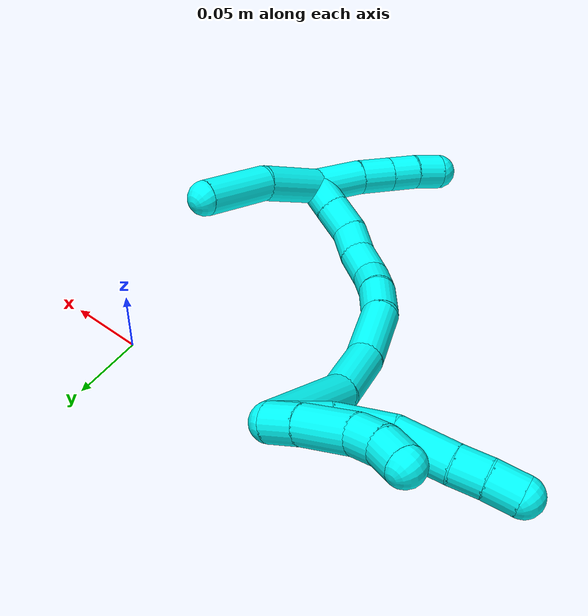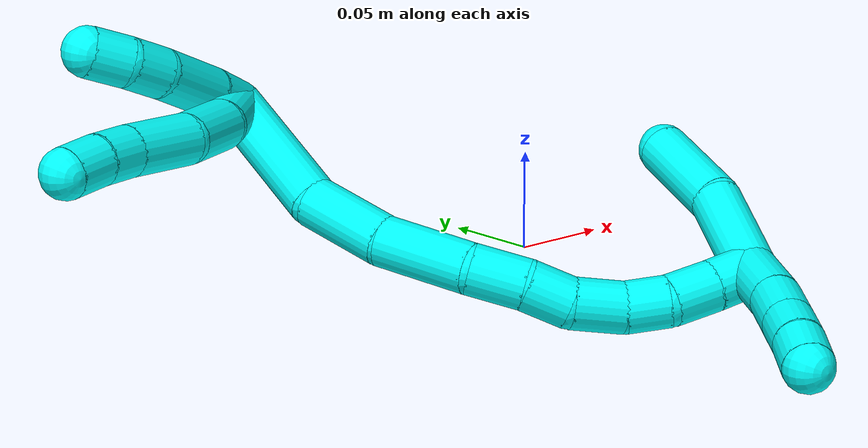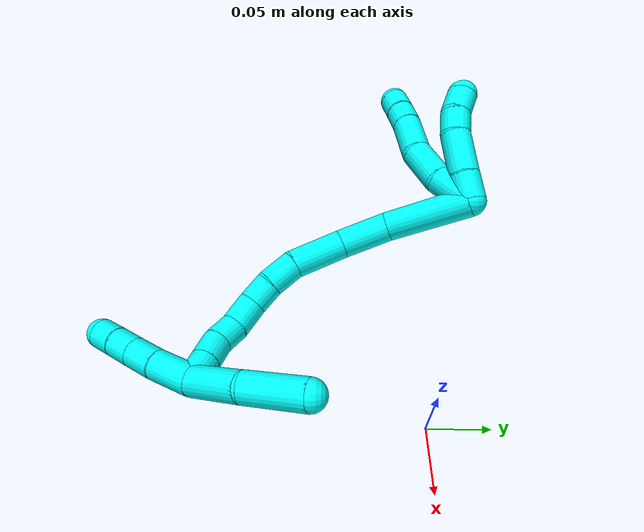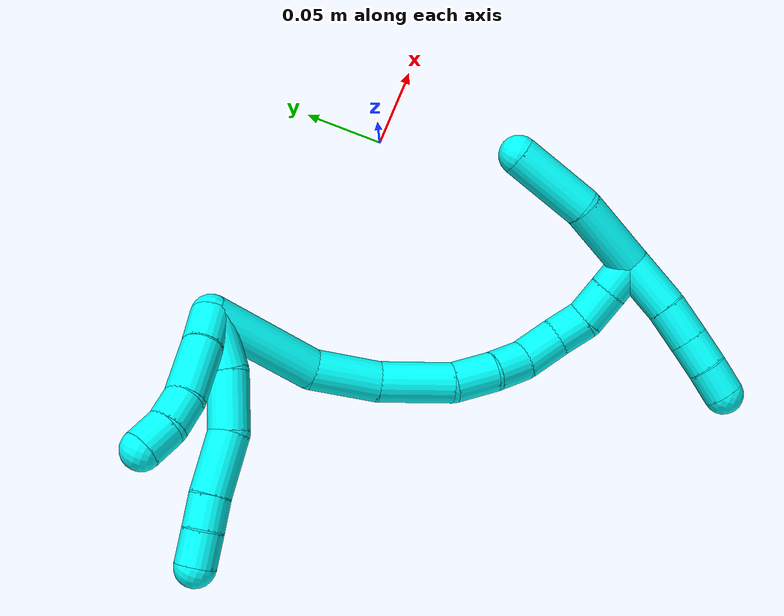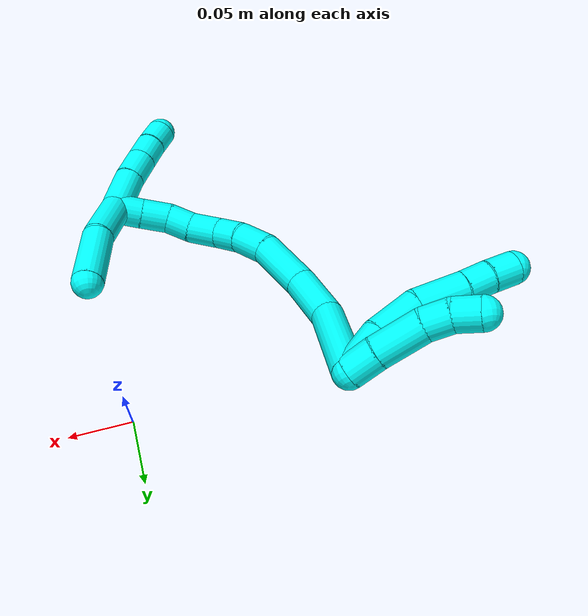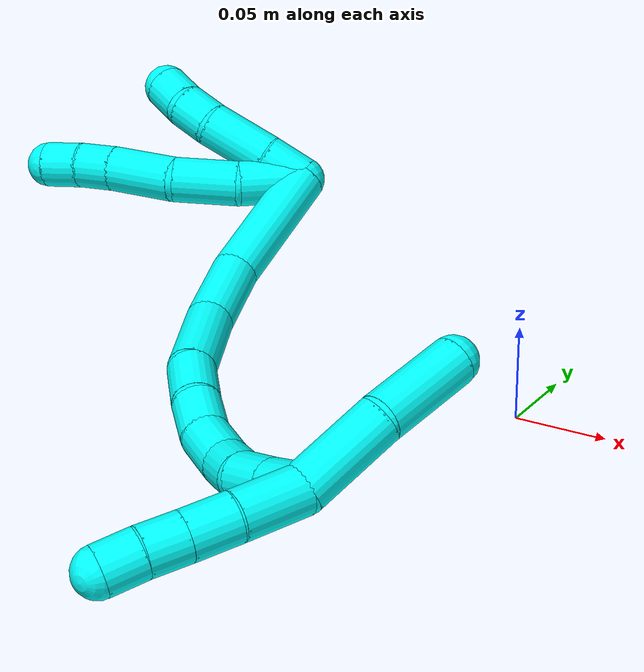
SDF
<sdf version="1.7">
 <world name="default">
  <model name="3">
   <static>0</static>
   <link name="3">
    <collision name="collision-cylinder-e_1_2_8">
     <pose>-0.011636 0.005981 0.011727 -0.471631 -0.723862 0.18145</pose>
     <geometry><cylinder><radius>0.0125</radius><length>0.035139</length></cylinder></geometry>
     <surface>
      <friction><ode><mu>1.16</mu><mu2>1.16</mu2><slip1>0</slip1><slip2>0</slip2></ode></friction>
      <contact><ode><kp>1e+06</kp><kd>1</kd><max_vel>0</max_vel><min_depth>0.001</min_depth></ode></contact>
     </surface>
    </collision>
    <visual name="visual-cylinder-e_1_2_8">
     <pose>-0.011636 0.005981 0.011727 -0.471631 -0.723862 0.18145</pose>
     <geometry><cylinder><radius>0.0125</radius><length>0.035139</length></cylinder></geometry>
     <material><ambient>0.003922 1 0.996078 1</ambient></material>
    </visual>
    <collision name="collision-cylinder-e_2_8_9">
     <pose>-0.037047 0.019922 0.031558 -0.776449 -0.881193 0.381</pose>
     <geometry><cylinder><radius>0.0125</radius><length>0.03571</length></cylinder></geometry>
     <surface>
      <friction><ode><mu>1.16</mu><mu2>1.16</mu2><slip1>0</slip1><slip2>0</slip2></ode></friction>
      <contact><ode><kp>1e+06</kp><kd>1</kd><max_vel>0</max_vel><min_depth>0.001</min_depth></ode></contact>
     </surface>
    </collision>
    <visual name="visual-cylinder-e_2_8_9">
     <pose>-0.037047 0.019922 0.031558 -0.776449 -0.881193 0.381</pose>
     <geometry><cylinder><radius>0.0125</radius><length>0.03571</length></cylinder></geometry>
     <material><ambient>0.003922 1 0.996078 1</ambient></material>
    </visual>
    <collision name="collision-cylinder-e_3_9_10">
     <pose>-0.06705 0.037121 0.042814 -1.242 -1.02927 0.768837</pose>
     <geometry><cylinder><radius>0.0125</radius><length>0.037875</length></cylinder></geometry>
     <surface>
      <friction><ode><mu>1.16</mu><mu2>1.16</mu2><slip1>0</slip1><slip2>0</slip2></ode></friction>
      <contact><ode><kp>1e+06</kp><kd>1</kd><max_vel>0</max_vel><min_depth>0.001</min_depth></ode></contact>
     </surface>
    </collision>
    <visual name="visual-cylinder-e_3_9_10">
     <pose>-0.06705 0.037121 0.042814 -1.242 -1.02927 0.768837</pose>
     <geometry><cylinder><radius>0.0125</radius><length>0.037875</length></cylinder></geometry>
     <material><ambient>0.003922 1 0.996078 1</ambient></material>
    </visual>
    <collision name="collision-cylinder-e_4_10_11">
     <pose>-0.091944 0.050901 0.048452 -1.06998 -1.03222 0.648781</pose>
     <geometry><cylinder><radius>0.0125</radius><length>0.02019</length></cylinder></geometry>
     <surface>
      <friction><ode><mu>1.16</mu><mu2>1.16</mu2><slip1>0</slip1><slip2>0</slip2></ode></friction>
      <contact><ode><kp>1e+06</kp><kd>1</kd><max_vel>0</max_vel><min_depth>0.001</min_depth></ode></contact>
     </surface>
    </collision>
    <visual name="visual-cylinder-e_4_10_11">
     <pose>-0.091944 0.050901 0.048452 -1.06998 -1.03222 0.648781</pose>
     <geometry><cylinder><radius>0.0125</radius><length>0.02019</length></cylinder></geometry>
     <material><ambient>0.003922 1 0.996078 1</ambient></material>
    </visual>
    <collision name="collision-cylinder-e_5_11_6">
     <pose>-0.110105 0.059347 0.053339 -1.01933 -1.1211 0.674854</pose>
     <geometry><cylinder><radius>0.0125</radius><length>0.021087</length></cylinder></geometry>
     <surface>
      <friction><ode><mu>1.16</mu><mu2>1.16</mu2><slip1>0</slip1><slip2>0</slip2></ode></friction>
      <contact><ode><kp>1e+06</kp><kd>1</kd><max_vel>0</max_vel><min_depth>0.001</min_depth></ode></contact>
     </surface>
    </collision>
    <visual name="visual-cylinder-e_5_11_6">
     <pose>-0.110105 0.059347 0.053339 -1.01933 -1.1211 0.674854</pose>
     <geometry><cylinder><radius>0.0125</radius><length>0.021087</length></cylinder></geometry>
     <material><ambient>0.003922 1 0.996078 1</ambient></material>
    </visual>
    <collision name="collision-cylinder-e_1_2_12">
     <pose>-0.006277 0.009439 0.002547 -1.30721 -0.570792 0.442101</pose>
     <geometry><cylinder><radius>0.0125</radius><length>0.023237</length></cylinder></geometry>
     <surface>
      <friction><ode><mu>1.16</mu><mu2>1.16</mu2><slip1>0</slip1><slip2>0</slip2></ode></friction>
      <contact><ode><kp>1e+06</kp><kd>1</kd><max_vel>0</max_vel><min_depth>0.001</min_depth></ode></contact>
     </surface>
    </collision>
    <visual name="visual-cylinder-e_1_2_12">
     <pose>-0.006277 0.009439 0.002547 -1.30721 -0.570792 0.442101</pose>
     <geometry><cylinder><radius>0.0125</radius><length>0.023237</length></cylinder></geometry>
     <material><ambient>0.003922 1 0.996078 1</ambient></material>
    </visual>
    <collision name="collision-cylinder-e_2_12_13">
     <pose>-0.023544 0.033246 0.008259 -1.35398 -0.641494 0.521833</pose>
     <geometry><cylinder><radius>0.0125</radius><length>0.036727</length></cylinder></geometry>
     <surface>
      <friction><ode><mu>1.16</mu><mu2>1.16</mu2><slip1>0</slip1><slip2>0</slip2></ode></friction>
      <contact><ode><kp>1e+06</kp><kd>1</kd><max_vel>0</max_vel><min_depth>0.001</min_depth></ode></contact>
     </surface>
    </collision>
    <visual name="visual-cylinder-e_2_12_13">
     <pose>-0.023544 0.033246 0.008259 -1.35398 -0.641494 0.521833</pose>
     <geometry><cylinder><radius>0.0125</radius><length>0.036727</length></cylinder></geometry>
     <material><ambient>0.003922 1 0.996078 1</ambient></material>
    </visual>
    <collision name="collision-cylinder-e_3_13_14">
     <pose>-0.040939 0.055288 0.011023 -1.62309 -0.695065 0.729244</pose>
     <geometry><cylinder><radius>0.0125</radius><length>0.020008</length></cylinder></geometry>
     <surface>
      <friction><ode><mu>1.16</mu><mu2>1.16</mu2><slip1>0</slip1><slip2>0</slip2></ode></friction>
      <contact><ode><kp>1e+06</kp><kd>1</kd><max_vel>0</max_vel><min_depth>0.001</min_depth></ode></contact>
     </surface>
    </collision>
    <visual name="visual-cylinder-e_3_13_14">
     <pose>-0.040939 0.055288 0.011023 -1.62309 -0.695065 0.729244</pose>
     <geometry><cylinder><radius>0.0125</radius><length>0.020008</length></cylinder></geometry>
     <material><ambient>0.003922 1 0.996078 1</ambient></material>
    </visual>
    <collision name="collision-cylinder-e_4_14_5">
     <pose>-0.05386 0.069891 0.007488 -1.9954 -0.708273 1.04052</pose>
     <geometry><cylinder><radius>0.0125</radius><length>0.020028</length></cylinder></geometry>
     <surface>
      <friction><ode><mu>1.16</mu><mu2>1.16</mu2><slip1>0</slip1><slip2>0</slip2></ode></friction>
      <contact><ode><kp>1e+06</kp><kd>1</kd><max_vel>0</max_vel><min_depth>0.001</min_depth></ode></contact>
     </surface>
    </collision>
    <visual name="visual-cylinder-e_4_14_5">
     <pose>-0.05386 0.069891 0.007488 -1.9954 -0.708273 1.04052</pose>
     <geometry><cylinder><radius>0.0125</radius><length>0.020028</length></cylinder></geometry>
     <material><ambient>0.003922 1 0.996078 1</ambient></material>
    </visual>
    <collision name="collision-cylinder-e_1_2_15">
     <pose>-0.007992 -0.014488 0.031706 0.428624 -0.22537 -0.049252</pose>
     <geometry><cylinder><radius>0.0125</radius><length>0.071528</length></cylinder></geometry>
     <surface>
      <friction><ode><mu>1.16</mu><mu2>1.16</mu2><slip1>0</slip1><slip2>0</slip2></ode></friction>
      <contact><ode><kp>1e+06</kp><kd>1</kd><max_vel>0</max_vel><min_depth>0.001</min_depth></ode></contact>
     </surface>
    </collision>
    <visual name="visual-cylinder-e_1_2_15">
     <pose>-0.007992 -0.014488 0.031706 0.428624 -0.22537 -0.049252</pose>
     <geometry><cylinder><radius>0.0125</radius><length>0.071528</length></cylinder></geometry>
     <material><ambient>0.003922 1 0.996078 1</ambient></material>
    </visual>
    <collision name="collision-cylinder-e_2_15_16">
     <pose>-0.013632 -0.036916 0.082857 0.387669 0.111545 0.021918</pose>
     <geometry><cylinder><radius>0.0125</radius><length>0.042269</length></cylinder></geometry>
     <surface>
      <friction><ode><mu>1.16</mu><mu2>1.16</mu2><slip1>0</slip1><slip2>0</slip2></ode></friction>
      <contact><ode><kp>1e+06</kp><kd>1</kd><max_vel>0</max_vel><min_depth>0.001</min_depth></ode></contact>
     </surface>
    </collision>
    <visual name="visual-cylinder-e_2_15_16">
     <pose>-0.013632 -0.036916 0.082857 0.387669 0.111545 0.021918</pose>
     <geometry><cylinder><radius>0.0125</radius><length>0.042269</length></cylinder></geometry>
     <material><ambient>0.003922 1 0.996078 1</ambient></material>
    </visual>
    <collision name="collision-cylinder-e_3_16_17">
     <pose>-0.004289 -0.052387 0.122763 0.352674 0.310227 0.055712</pose>
     <geometry><cylinder><radius>0.0125</radius><length>0.045792</length></cylinder></geometry>
     <surface>
      <friction><ode><mu>1.16</mu><mu2>1.16</mu2><slip1>0</slip1><slip2>0</slip2></ode></friction>
      <contact><ode><kp>1e+06</kp><kd>1</kd><max_vel>0</max_vel><min_depth>0.001</min_depth></ode></contact>
     </surface>
    </collision>
    <visual name="visual-cylinder-e_3_16_17">
     <pose>-0.004289 -0.052387 0.122763 0.352674 0.310227 0.055712</pose>
     <geometry><cylinder><radius>0.0125</radius><length>0.045792</length></cylinder></geometry>
     <material><ambient>0.003922 1 0.996078 1</ambient></material>
    </visual>
    <collision name="collision-cylinder-e_4_17_18">
     <pose>0.009117 -0.066626 0.152962 0.603191 0.49717 0.157602</pose>
     <geometry><cylinder><radius>0.0125</radius><length>0.026908</length></cylinder></geometry>
     <surface>
      <friction><ode><mu>1.16</mu><mu2>1.16</mu2><slip1>0</slip1><slip2>0</slip2></ode></friction>
      <contact><ode><kp>1e+06</kp><kd>1</kd><max_vel>0</max_vel><min_depth>0.001</min_depth></ode></contact>
     </surface>
    </collision>
    <visual name="visual-cylinder-e_4_17_18">
     <pose>0.009117 -0.066626 0.152962 0.603191 0.49717 0.157602</pose>
     <geometry><cylinder><radius>0.0125</radius><length>0.026908</length></cylinder></geometry>
     <material><ambient>0.003922 1 0.996078 1</ambient></material>
    </visual>
    <collision name="collision-cylinder-e_5_18_19">
     <pose>0.02047 -0.080529 0.169501 0.813552 0.462589 0.202225</pose>
     <geometry><cylinder><radius>0.0125</radius><length>0.022124</length></cylinder></geometry>
     <surface>
      <friction><ode><mu>1.16</mu><mu2>1.16</mu2><slip1>0</slip1><slip2>0</slip2></ode></friction>
      <contact><ode><kp>1e+06</kp><kd>1</kd><max_vel>0</max_vel><min_depth>0.001</min_depth></ode></contact>
     </surface>
    </collision>
    <visual name="visual-cylinder-e_5_18_19">
     <pose>0.02047 -0.080529 0.169501 0.813552 0.462589 0.202225</pose>
     <geometry><cylinder><radius>0.0125</radius><length>0.022124</length></cylinder></geometry>
     <material><ambient>0.003922 1 0.996078 1</ambient></material>
    </visual>
    <collision name="collision-cylinder-e_6_19_20">
     <pose>0.034573 -0.094261 0.182661 0.799203 0.787844 0.347534</pose>
     <geometry><cylinder><radius>0.0125</radius><length>0.025863</length></cylinder></geometry>
     <surface>
      <friction><ode><mu>1.16</mu><mu2>1.16</mu2><slip1>0</slip1><slip2>0</slip2></ode></friction>
      <contact><ode><kp>1e+06</kp><kd>1</kd><max_vel>0</max_vel><min_depth>0.001</min_depth></ode></contact>
     </surface>
    </collision>
    <visual name="visual-cylinder-e_6_19_20">
     <pose>0.034573 -0.094261 0.182661 0.799203 0.787844 0.347534</pose>
     <geometry><cylinder><radius>0.0125</radius><length>0.025863</length></cylinder></geometry>
     <material><ambient>0.003922 1 0.996078 1</ambient></material>
    </visual>
    <collision name="collision-cylinder-e_7_20_21">
     <pose>0.052175 -0.103541 0.194767 0.445198 0.924268 0.224546</pose>
     <geometry><cylinder><radius>0.0125</radius><length>0.021135</length></cylinder></geometry>
     <surface>
      <friction><ode><mu>1.16</mu><mu2>1.16</mu2><slip1>0</slip1><slip2>0</slip2></ode></friction>
      <contact><ode><kp>1e+06</kp><kd>1</kd><max_vel>0</max_vel><min_depth>0.001</min_depth></ode></contact>
     </surface>
    </collision>
    <visual name="visual-cylinder-e_7_20_21">
     <pose>0.052175 -0.103541 0.194767 0.445198 0.924268 0.224546</pose>
     <geometry><cylinder><radius>0.0125</radius><length>0.021135</length></cylinder></geometry>
     <material><ambient>0.003922 1 0.996078 1</ambient></material>
    </visual>
    <collision name="collision-cylinder-e_8_21_22">
     <pose>0.071351 -0.109057 0.203504 0.747913 1.20781 0.528775</pose>
     <geometry><cylinder><radius>0.0125</radius><length>0.02298</length></cylinder></geometry>
     <surface>
      <friction><ode><mu>1.16</mu><mu2>1.16</mu2><slip1>0</slip1><slip2>0</slip2></ode></friction>
      <contact><ode><kp>1e+06</kp><kd>1</kd><max_vel>0</max_vel><min_depth>0.001</min_depth></ode></contact>
     </surface>
    </collision>
    <visual name="visual-cylinder-e_8_21_22">
     <pose>0.071351 -0.109057 0.203504 0.747913 1.20781 0.528775</pose>
     <geometry><cylinder><radius>0.0125</radius><length>0.02298</length></cylinder></geometry>
     <material><ambient>0.003922 1 0.996078 1</ambient></material>
    </visual>
    <collision name="collision-cylinder-e_9_22_1">
     <pose>0.09223 -0.114016 0.20913 0.691984 1.24519 0.50644</pose>
     <geometry><cylinder><radius>0.0125</radius><length>0.0214</length></cylinder></geometry>
     <surface>
      <friction><ode><mu>1.16</mu><mu2>1.16</mu2><slip1>0</slip1><slip2>0</slip2></ode></friction>
      <contact><ode><kp>1e+06</kp><kd>1</kd><max_vel>0</max_vel><min_depth>0.001</min_depth></ode></contact>
     </surface>
    </collision>
    <visual name="visual-cylinder-e_9_22_1">
     <pose>0.09223 -0.114016 0.20913 0.691984 1.24519 0.50644</pose>
     <geometry><cylinder><radius>0.0125</radius><length>0.0214</length></cylinder></geometry>
     <material><ambient>0.003922 1 0.996078 1</ambient></material>
    </visual>
    <collision name="collision-cylinder-e_1_1_23">
     <pose>0.114014 -0.109969 0.191117 -2.84851 0.495108 -2.08444</pose>
     <geometry><cylinder><radius>0.0125</radius><length>0.049023</length></cylinder></geometry>
     <surface>
      <friction><ode><mu>1.16</mu><mu2>1.16</mu2><slip1>0</slip1><slip2>0</slip2></ode></friction>
      <contact><ode><kp>1e+06</kp><kd>1</kd><max_vel>0</max_vel><min_depth>0.001</min_depth></ode></contact>
     </surface>
    </collision>
    <visual name="visual-cylinder-e_1_1_23">
     <pose>0.114014 -0.109969 0.191117 -2.84851 0.495108 -2.08444</pose>
     <geometry><cylinder><radius>0.0125</radius><length>0.049023</length></cylinder></geometry>
     <material><ambient>0.003922 1 0.996078 1</ambient></material>
    </visual>
    <collision name="collision-cylinder-e_2_23_4">
     <pose>0.133049 -0.100412 0.146302 -3.00484 0.294102 -2.27542</pose>
     <geometry><cylinder><radius>0.0125</radius><length>0.050977</length></cylinder></geometry>
     <surface>
      <friction><ode><mu>1.16</mu><mu2>1.16</mu2><slip1>0</slip1><slip2>0</slip2></ode></friction>
      <contact><ode><kp>1e+06</kp><kd>1</kd><max_vel>0</max_vel><min_depth>0.001</min_depth></ode></contact>
     </surface>
    </collision>
    <visual name="visual-cylinder-e_2_23_4">
     <pose>0.133049 -0.100412 0.146302 -3.00484 0.294102 -2.27542</pose>
     <geometry><cylinder><radius>0.0125</radius><length>0.050977</length></cylinder></geometry>
     <material><ambient>0.003922 1 0.996078 1</ambient></material>
    </visual>
    <collision name="collision-cylinder-e_1_1_24">
     <pose>0.095157 -0.114439 0.227557 -0.111067 -0.426 0.024045</pose>
     <geometry><cylinder><radius>0.0125</radius><length>0.034899</length></cylinder></geometry>
     <surface>
      <friction><ode><mu>1.16</mu><mu2>1.16</mu2><slip1>0</slip1><slip2>0</slip2></ode></friction>
      <contact><ode><kp>1e+06</kp><kd>1</kd><max_vel>0</max_vel><min_depth>0.001</min_depth></ode></contact>
     </surface>
    </collision>
    <visual name="visual-cylinder-e_1_1_24">
     <pose>0.095157 -0.114439 0.227557 -0.111067 -0.426 0.024045</pose>
     <geometry><cylinder><radius>0.0125</radius><length>0.034899</length></cylinder></geometry>
     <material><ambient>0.003922 1 0.996078 1</ambient></material>
    </visual>
    <collision name="collision-cylinder-e_2_24_25">
     <pose>0.081786 -0.111509 0.253759 -0.111798 -0.531644 0.030468</pose>
     <geometry><cylinder><radius>0.0125</radius><length>0.024305</length></cylinder></geometry>
     <surface>
      <friction><ode><mu>1.16</mu><mu2>1.16</mu2><slip1>0</slip1><slip2>0</slip2></ode></friction>
      <contact><ode><kp>1e+06</kp><kd>1</kd><max_vel>0</max_vel><min_depth>0.001</min_depth></ode></contact>
     </surface>
    </collision>
    <visual name="visual-cylinder-e_2_24_25">
     <pose>0.081786 -0.111509 0.253759 -0.111798 -0.531644 0.030468</pose>
     <geometry><cylinder><radius>0.0125</radius><length>0.024305</length></cylinder></geometry>
     <material><ambient>0.003922 1 0.996078 1</ambient></material>
    </visual>
    <collision name="collision-cylinder-e_3_25_26">
     <pose>0.070364 -0.109172 0.272953 -0.132211 -0.535743 0.036337</pose>
     <geometry><cylinder><radius>0.0125</radius><length>0.020611</length></cylinder></geometry>
     <surface>
      <friction><ode><mu>1.16</mu><mu2>1.16</mu2><slip1>0</slip1><slip2>0</slip2></ode></friction>
      <contact><ode><kp>1e+06</kp><kd>1</kd><max_vel>0</max_vel><min_depth>0.001</min_depth></ode></contact>
     </surface>
    </collision>
    <visual name="visual-cylinder-e_3_25_26">
     <pose>0.070364 -0.109172 0.272953 -0.132211 -0.535743 0.036337</pose>
     <geometry><cylinder><radius>0.0125</radius><length>0.020611</length></cylinder></geometry>
     <material><ambient>0.003922 1 0.996078 1</ambient></material>
    </visual>
    <collision name="collision-cylinder-e_4_26_3">
     <pose>0.059477 -0.10758 0.290105 -0.050636 -0.591336 0.015426</pose>
     <geometry><cylinder><radius>0.0125</radius><length>0.020185</length></cylinder></geometry>
     <surface>
      <friction><ode><mu>1.16</mu><mu2>1.16</mu2><slip1>0</slip1><slip2>0</slip2></ode></friction>
      <contact><ode><kp>1e+06</kp><kd>1</kd><max_vel>0</max_vel><min_depth>0.001</min_depth></ode></contact>
     </surface>
    </collision>
    <visual name="visual-cylinder-e_4_26_3">
     <pose>0.059477 -0.10758 0.290105 -0.050636 -0.591336 0.015426</pose>
     <geometry><cylinder><radius>0.0125</radius><length>0.020185</length></cylinder></geometry>
     <material><ambient>0.003922 1 0.996078 1</ambient></material>
    </visual>
    <collision name="collision-sphere-3">
     <pose>0.053851 -0.107156 0.298474 0 -0 0</pose>
     <geometry><sphere><radius>0.0125</radius></sphere></geometry>
     <surface>
      <friction><ode><mu>1.16</mu><mu2>1.16</mu2><slip1>0</slip1><slip2>0</slip2></ode></friction>
      <contact><ode><kp>1e+06</kp><kd>1</kd><max_vel>0</max_vel><min_depth>0.001</min_depth></ode></contact>
     </surface>
    </collision>
    <visual name="visual-sphere-3">
     <pose>0.053851 -0.107156 0.298474 0 -0 0</pose>
     <geometry><sphere><radius>0.0125</radius></sphere></geometry>
     <material><ambient>0.003922 1 0.996078 1</ambient></material>
    </visual>
    <collision name="collision-sphere-26">
     <pose>0.065104 -0.108004 0.281737 0 -0 0</pose>
     <geometry><sphere><radius>0.0125</radius></sphere></geometry>
     <surface>
      <friction><ode><mu>1.16</mu><mu2>1.16</mu2><slip1>0</slip1><slip2>0</slip2></ode></friction>
      <contact><ode><kp>1e+06</kp><kd>1</kd><max_vel>0</max_vel><min_depth>0.001</min_depth></ode></contact>
     </surface>
    </collision>
    <visual name="visual-sphere-26">
     <pose>0.065104 -0.108004 0.281737 0 -0 0</pose>
     <geometry><sphere><radius>0.0125</radius></sphere></geometry>
     <material><ambient>0.003922 1 0.996078 1</ambient></material>
    </visual>
    <collision name="collision-sphere-25">
     <pose>0.075625 -0.11034 0.264169 0 -0 0</pose>
     <geometry><sphere><radius>0.0125</radius></sphere></geometry>
     <surface>
      <friction><ode><mu>1.16</mu><mu2>1.16</mu2><slip1>0</slip1><slip2>0</slip2></ode></friction>
      <contact><ode><kp>1e+06</kp><kd>1</kd><max_vel>0</max_vel><min_depth>0.001</min_depth></ode></contact>
     </surface>
    </collision>
    <visual name="visual-sphere-25">
     <pose>0.075625 -0.11034 0.264169 0 -0 0</pose>
     <geometry><sphere><radius>0.0125</radius></sphere></geometry>
     <material><ambient>0.003922 1 0.996078 1</ambient></material>
    </visual>
    <collision name="collision-sphere-24">
     <pose>0.087947 -0.112678 0.243349 0 -0 0</pose>
     <geometry><sphere><radius>0.0125</radius></sphere></geometry>
     <surface>
      <friction><ode><mu>1.16</mu><mu2>1.16</mu2><slip1>0</slip1><slip2>0</slip2></ode></friction>
      <contact><ode><kp>1e+06</kp><kd>1</kd><max_vel>0</max_vel><min_depth>0.001</min_depth></ode></contact>
     </surface>
    </collision>
    <visual name="visual-sphere-24">
     <pose>0.087947 -0.112678 0.243349 0 -0 0</pose>
     <geometry><sphere><radius>0.0125</radius></sphere></geometry>
     <material><ambient>0.003922 1 0.996078 1</ambient></material>
    </visual>
    <collision name="collision-sphere-4">
     <pose>0.140437 -0.097086 0.122136 0 -0 0</pose>
     <geometry><sphere><radius>0.0125</radius></sphere></geometry>
     <surface>
      <friction><ode><mu>1.16</mu><mu2>1.16</mu2><slip1>0</slip1><slip2>0</slip2></ode></friction>
      <contact><ode><kp>1e+06</kp><kd>1</kd><max_vel>0</max_vel><min_depth>0.001</min_depth></ode></contact>
     </surface>
    </collision>
    <visual name="visual-sphere-4">
     <pose>0.140437 -0.097086 0.122136 0 -0 0</pose>
     <geometry><sphere><radius>0.0125</radius></sphere></geometry>
     <material><ambient>0.003922 1 0.996078 1</ambient></material>
    </visual>
    <collision name="collision-sphere-23">
     <pose>0.12566 -0.103738 0.170469 0 -0 0</pose>
     <geometry><sphere><radius>0.0125</radius></sphere></geometry>
     <surface>
      <friction><ode><mu>1.16</mu><mu2>1.16</mu2><slip1>0</slip1><slip2>0</slip2></ode></friction>
      <contact><ode><kp>1e+06</kp><kd>1</kd><max_vel>0</max_vel><min_depth>0.001</min_depth></ode></contact>
     </surface>
    </collision>
    <visual name="visual-sphere-23">
     <pose>0.12566 -0.103738 0.170469 0 -0 0</pose>
     <geometry><sphere><radius>0.0125</radius></sphere></geometry>
     <material><ambient>0.003922 1 0.996078 1</ambient></material>
    </visual>
    <collision name="collision-sphere-1">
     <pose>0.102368 -0.1162 0.211765 0 -0 0</pose>
     <geometry><sphere><radius>0.0125</radius></sphere></geometry>
     <surface>
      <friction><ode><mu>1.16</mu><mu2>1.16</mu2><slip1>0</slip1><slip2>0</slip2></ode></friction>
      <contact><ode><kp>1e+06</kp><kd>1</kd><max_vel>0</max_vel><min_depth>0.001</min_depth></ode></contact>
     </surface>
    </collision>
    <visual name="visual-sphere-1">
     <pose>0.102368 -0.1162 0.211765 0 -0 0</pose>
     <geometry><sphere><radius>0.0125</radius></sphere></geometry>
     <material><ambient>0.003922 1 0.996078 1</ambient></material>
    </visual>
    <collision name="collision-sphere-22">
     <pose>0.082092 -0.111832 0.206495 0 -0 0</pose>
     <geometry><sphere><radius>0.0125</radius></sphere></geometry>
     <surface>
      <friction><ode><mu>1.16</mu><mu2>1.16</mu2><slip1>0</slip1><slip2>0</slip2></ode></friction>
      <contact><ode><kp>1e+06</kp><kd>1</kd><max_vel>0</max_vel><min_depth>0.001</min_depth></ode></contact>
     </surface>
    </collision>
    <visual name="visual-sphere-22">
     <pose>0.082092 -0.111832 0.206495 0 -0 0</pose>
     <geometry><sphere><radius>0.0125</radius></sphere></geometry>
     <material><ambient>0.003922 1 0.996078 1</ambient></material>
    </visual>
    <collision name="collision-sphere-21">
     <pose>0.060609 -0.106283 0.200513 0 -0 0</pose>
     <geometry><sphere><radius>0.0125</radius></sphere></geometry>
     <surface>
      <friction><ode><mu>1.16</mu><mu2>1.16</mu2><slip1>0</slip1><slip2>0</slip2></ode></friction>
      <contact><ode><kp>1e+06</kp><kd>1</kd><max_vel>0</max_vel><min_depth>0.001</min_depth></ode></contact>
     </surface>
    </collision>
    <visual name="visual-sphere-21">
     <pose>0.060609 -0.106283 0.200513 0 -0 0</pose>
     <geometry><sphere><radius>0.0125</radius></sphere></geometry>
     <material><ambient>0.003922 1 0.996078 1</ambient></material>
    </visual>
    <collision name="collision-sphere-6">
     <pose>-0.1196 0.06325 0.05574 0 -0 0</pose>
     <geometry><sphere><radius>0.0125</radius></sphere></geometry>
     <surface>
      <friction><ode><mu>1.16</mu><mu2>1.16</mu2><slip1>0</slip1><slip2>0</slip2></ode></friction>
      <contact><ode><kp>1e+06</kp><kd>1</kd><max_vel>0</max_vel><min_depth>0.001</min_depth></ode></contact>
     </surface>
    </collision>
    <visual name="visual-sphere-6">
     <pose>-0.1196 0.06325 0.05574 0 -0 0</pose>
     <geometry><sphere><radius>0.0125</radius></sphere></geometry>
     <material><ambient>0.003922 1 0.996078 1</ambient></material>
    </visual>
    <collision name="collision-sphere-11">
     <pose>-0.10061 0.055443 0.050938 0 -0 0</pose>
     <geometry><sphere><radius>0.0125</radius></sphere></geometry>
     <surface>
      <friction><ode><mu>1.16</mu><mu2>1.16</mu2><slip1>0</slip1><slip2>0</slip2></ode></friction>
      <contact><ode><kp>1e+06</kp><kd>1</kd><max_vel>0</max_vel><min_depth>0.001</min_depth></ode></contact>
     </surface>
    </collision>
    <visual name="visual-sphere-11">
     <pose>-0.10061 0.055443 0.050938 0 -0 0</pose>
     <geometry><sphere><radius>0.0125</radius></sphere></geometry>
     <material><ambient>0.003922 1 0.996078 1</ambient></material>
    </visual>
    <collision name="collision-sphere-10">
     <pose>-0.083278 0.046359 0.045966 0 -0 0</pose>
     <geometry><sphere><radius>0.0125</radius></sphere></geometry>
     <surface>
      <friction><ode><mu>1.16</mu><mu2>1.16</mu2><slip1>0</slip1><slip2>0</slip2></ode></friction>
      <contact><ode><kp>1e+06</kp><kd>1</kd><max_vel>0</max_vel><min_depth>0.001</min_depth></ode></contact>
     </surface>
    </collision>
    <visual name="visual-sphere-10">
     <pose>-0.083278 0.046359 0.045966 0 -0 0</pose>
     <geometry><sphere><radius>0.0125</radius></sphere></geometry>
     <material><ambient>0.003922 1 0.996078 1</ambient></material>
    </visual>
    <collision name="collision-sphere-9">
     <pose>-0.050822 0.027883 0.039662 0 -0 0</pose>
     <geometry><sphere><radius>0.0125</radius></sphere></geometry>
     <surface>
      <friction><ode><mu>1.16</mu><mu2>1.16</mu2><slip1>0</slip1><slip2>0</slip2></ode></friction>
      <contact><ode><kp>1e+06</kp><kd>1</kd><max_vel>0</max_vel><min_depth>0.001</min_depth></ode></contact>
     </surface>
    </collision>
    <visual name="visual-sphere-9">
     <pose>-0.050822 0.027883 0.039662 0 -0 0</pose>
     <geometry><sphere><radius>0.0125</radius></sphere></geometry>
     <material><ambient>0.003922 1 0.996078 1</ambient></material>
    </visual>
    <collision name="collision-sphere-2">
     <geometry><sphere><radius>0.0125</radius></sphere></geometry>
     <surface>
      <friction><ode><mu>1.16</mu><mu2>1.16</mu2><slip1>0</slip1><slip2>0</slip2></ode></friction>
      <contact><ode><kp>1e+06</kp><kd>1</kd><max_vel>0</max_vel><min_depth>0.001</min_depth></ode></contact>
     </surface>
    </collision>
    <visual name="visual-sphere-2">
     <geometry><sphere><radius>0.0125</radius></sphere></geometry>
     <material><ambient>0.003922 1 0.996078 1</ambient></material>
    </visual>
    <collision name="collision-sphere-19">
     <pose>0.025407 -0.087723 0.176301 0 -0 0</pose>
     <geometry><sphere><radius>0.0125</radius></sphere></geometry>
     <surface>
      <friction><ode><mu>1.16</mu><mu2>1.16</mu2><slip1>0</slip1><slip2>0</slip2></ode></friction>
      <contact><ode><kp>1e+06</kp><kd>1</kd><max_vel>0</max_vel><min_depth>0.001</min_depth></ode></contact>
     </surface>
    </collision>
    <visual name="visual-sphere-19">
     <pose>0.025407 -0.087723 0.176301 0 -0 0</pose>
     <geometry><sphere><radius>0.0125</radius></sphere></geometry>
     <material><ambient>0.003922 1 0.996078 1</ambient></material>
    </visual>
    <collision name="collision-sphere-8">
     <pose>-0.023272 0.011962 0.023454 0 -0 0</pose>
     <geometry><sphere><radius>0.0125</radius></sphere></geometry>
     <surface>
      <friction><ode><mu>1.16</mu><mu2>1.16</mu2><slip1>0</slip1><slip2>0</slip2></ode></friction>
      <contact><ode><kp>1e+06</kp><kd>1</kd><max_vel>0</max_vel><min_depth>0.001</min_depth></ode></contact>
     </surface>
    </collision>
    <visual name="visual-sphere-8">
     <pose>-0.023272 0.011962 0.023454 0 -0 0</pose>
     <geometry><sphere><radius>0.0125</radius></sphere></geometry>
     <material><ambient>0.003922 1 0.996078 1</ambient></material>
    </visual>
    <collision name="collision-sphere-12">
     <pose>-0.012555 0.018878 0.005094 0 -0 0</pose>
     <geometry><sphere><radius>0.0125</radius></sphere></geometry>
     <surface>
      <friction><ode><mu>1.16</mu><mu2>1.16</mu2><slip1>0</slip1><slip2>0</slip2></ode></friction>
      <contact><ode><kp>1e+06</kp><kd>1</kd><max_vel>0</max_vel><min_depth>0.001</min_depth></ode></contact>
     </surface>
    </collision>
    <visual name="visual-sphere-12">
     <pose>-0.012555 0.018878 0.005094 0 -0 0</pose>
     <geometry><sphere><radius>0.0125</radius></sphere></geometry>
     <material><ambient>0.003922 1 0.996078 1</ambient></material>
    </visual>
    <collision name="collision-sphere-13">
     <pose>-0.034532 0.047615 0.011424 0 -0 0</pose>
     <geometry><sphere><radius>0.0125</radius></sphere></geometry>
     <surface>
      <friction><ode><mu>1.16</mu><mu2>1.16</mu2><slip1>0</slip1><slip2>0</slip2></ode></friction>
      <contact><ode><kp>1e+06</kp><kd>1</kd><max_vel>0</max_vel><min_depth>0.001</min_depth></ode></contact>
     </surface>
    </collision>
    <visual name="visual-sphere-13">
     <pose>-0.034532 0.047615 0.011424 0 -0 0</pose>
     <geometry><sphere><radius>0.0125</radius></sphere></geometry>
     <material><ambient>0.003922 1 0.996078 1</ambient></material>
    </visual>
    <collision name="collision-sphere-14">
     <pose>-0.047346 0.062961 0.010621 0 -0 0</pose>
     <geometry><sphere><radius>0.0125</radius></sphere></geometry>
     <surface>
      <friction><ode><mu>1.16</mu><mu2>1.16</mu2><slip1>0</slip1><slip2>0</slip2></ode></friction>
      <contact><ode><kp>1e+06</kp><kd>1</kd><max_vel>0</max_vel><min_depth>0.001</min_depth></ode></contact>
     </surface>
    </collision>
    <visual name="visual-sphere-14">
     <pose>-0.047346 0.062961 0.010621 0 -0 0</pose>
     <geometry><sphere><radius>0.0125</radius></sphere></geometry>
     <material><ambient>0.003922 1 0.996078 1</ambient></material>
    </visual>
    <collision name="collision-sphere-5">
     <pose>-0.060375 0.076821 0.004355 0 -0 0</pose>
     <geometry><sphere><radius>0.0125</radius></sphere></geometry>
     <surface>
      <friction><ode><mu>1.16</mu><mu2>1.16</mu2><slip1>0</slip1><slip2>0</slip2></ode></friction>
      <contact><ode><kp>1e+06</kp><kd>1</kd><max_vel>0</max_vel><min_depth>0.001</min_depth></ode></contact>
     </surface>
    </collision>
    <visual name="visual-sphere-5">
     <pose>-0.060375 0.076821 0.004355 0 -0 0</pose>
     <geometry><sphere><radius>0.0125</radius></sphere></geometry>
     <material><ambient>0.003922 1 0.996078 1</ambient></material>
    </visual>
    <collision name="collision-sphere-15">
     <pose>-0.015984 -0.028977 0.063412 0 -0 0</pose>
     <geometry><sphere><radius>0.0125</radius></sphere></geometry>
     <surface>
      <friction><ode><mu>1.16</mu><mu2>1.16</mu2><slip1>0</slip1><slip2>0</slip2></ode></friction>
      <contact><ode><kp>1e+06</kp><kd>1</kd><max_vel>0</max_vel><min_depth>0.001</min_depth></ode></contact>
     </surface>
    </collision>
    <visual name="visual-sphere-15">
     <pose>-0.015984 -0.028977 0.063412 0 -0 0</pose>
     <geometry><sphere><radius>0.0125</radius></sphere></geometry>
     <material><ambient>0.003922 1 0.996078 1</ambient></material>
    </visual>
    <collision name="collision-sphere-16">
     <pose>-0.011279 -0.044856 0.102301 0 -0 0</pose>
     <geometry><sphere><radius>0.0125</radius></sphere></geometry>
     <surface>
      <friction><ode><mu>1.16</mu><mu2>1.16</mu2><slip1>0</slip1><slip2>0</slip2></ode></friction>
      <contact><ode><kp>1e+06</kp><kd>1</kd><max_vel>0</max_vel><min_depth>0.001</min_depth></ode></contact>
     </surface>
    </collision>
    <visual name="visual-sphere-16">
     <pose>-0.011279 -0.044856 0.102301 0 -0 0</pose>
     <geometry><sphere><radius>0.0125</radius></sphere></geometry>
     <material><ambient>0.003922 1 0.996078 1</ambient></material>
    </visual>
    <collision name="collision-sphere-17">
     <pose>0.0027 -0.059918 0.143224 0 -0 0</pose>
     <geometry><sphere><radius>0.0125</radius></sphere></geometry>
     <surface>
      <friction><ode><mu>1.16</mu><mu2>1.16</mu2><slip1>0</slip1><slip2>0</slip2></ode></friction>
      <contact><ode><kp>1e+06</kp><kd>1</kd><max_vel>0</max_vel><min_depth>0.001</min_depth></ode></contact>
     </surface>
    </collision>
    <visual name="visual-sphere-17">
     <pose>0.0027 -0.059918 0.143224 0 -0 0</pose>
     <geometry><sphere><radius>0.0125</radius></sphere></geometry>
     <material><ambient>0.003922 1 0.996078 1</ambient></material>
    </visual>
    <collision name="collision-sphere-18">
     <pose>0.015534 -0.073335 0.162701 0 -0 0</pose>
     <geometry><sphere><radius>0.0125</radius></sphere></geometry>
     <surface>
      <friction><ode><mu>1.16</mu><mu2>1.16</mu2><slip1>0</slip1><slip2>0</slip2></ode></friction>
      <contact><ode><kp>1e+06</kp><kd>1</kd><max_vel>0</max_vel><min_depth>0.001</min_depth></ode></contact>
     </surface>
    </collision>
    <visual name="visual-sphere-18">
     <pose>0.015534 -0.073335 0.162701 0 -0 0</pose>
     <geometry><sphere><radius>0.0125</radius></sphere></geometry>
     <material><ambient>0.003922 1 0.996078 1</ambient></material>
    </visual>
    <collision name="collision-sphere-20">
     <pose>0.04374 -0.1008 0.189021 0 -0 0</pose>
     <geometry><sphere><radius>0.0125</radius></sphere></geometry>
     <surface>
      <friction><ode><mu>1.16</mu><mu2>1.16</mu2><slip1>0</slip1><slip2>0</slip2></ode></friction>
      <contact><ode><kp>1e+06</kp><kd>1</kd><max_vel>0</max_vel><min_depth>0.001</min_depth></ode></contact>
     </surface>
    </collision>
    <visual name="visual-sphere-20">
     <pose>0.04374 -0.1008 0.189021 0 -0 0</pose>
     <geometry><sphere><radius>0.0125</radius></sphere></geometry>
     <material><ambient>0.003922 1 0.996078 1</ambient></material>
    </visual>
    <inertial>
     <pose>0.018584 -0.041633 0.11422 0 -0 0</pose>
     <mass>0.75</mass>
     <inertia><ixx>5.5e-05</ixx><ixy>0</ixy><ixz>0</ixz><iyy>0.000101</iyy><iyz>0</iyz><izz>3.6e-05</izz></inertia>
    </inertial>
   </link>
   <pose>-0.15423 0.040729 0.091597 1.60505 -0.480203 -0.071329</pose>
  </model>
 </world>
</sdf>
